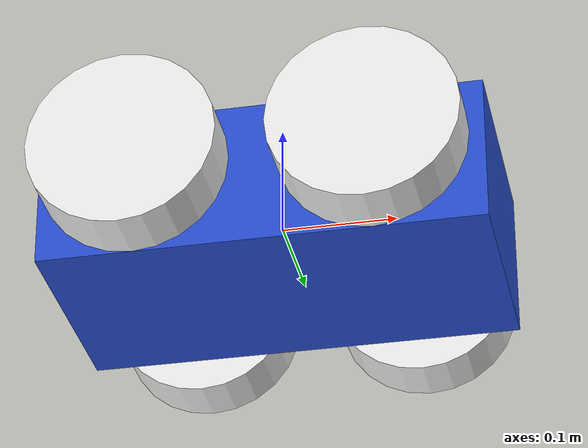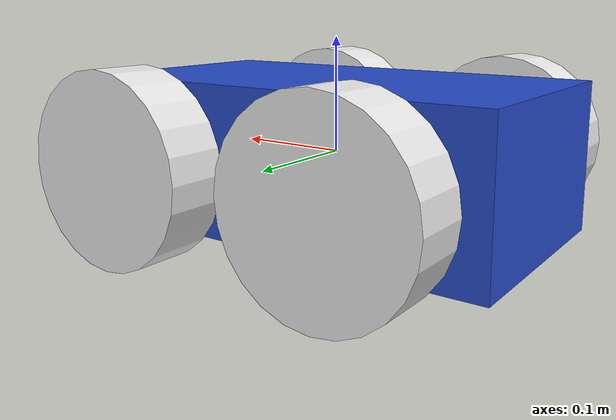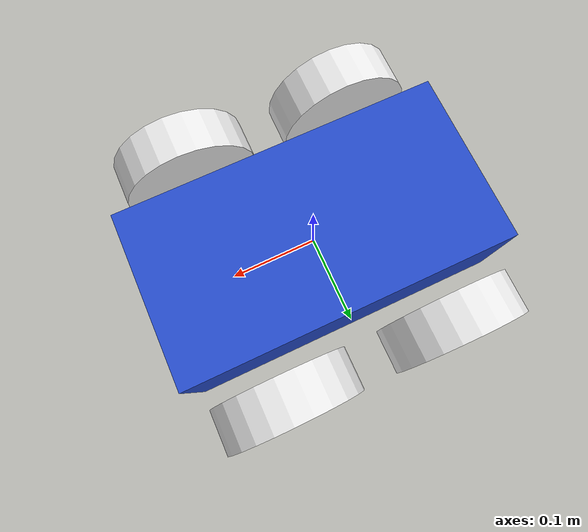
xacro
<?xml version='1.0'?>

<robot name="myrobot" xmlns:xacro="http://www.ros.org/wiki/xacro">

  <xacro:property name="cameraSize" value="0.05"/>
  <xacro:property name="cameraMass" value="0.1"/>
  <xacro:property name="camera_link" value="0.05" />

  <xacro:include filename="$(find mybot_description)/urdf/mybot.gazebo" />
  <xacro:include filename="$(find mybot_description)/urdf/materials.xacro" />
  <xacro:include filename="$(find mybot_description)/urdf/macros.xacro" />

  <link name='chassis'>
    <pose>0 0 0.1 0 0 0</pose>

    <inertial>
      <mass value="5.0"/>
      <origin xyz="0.0 0 0.1" rpy=" 0 0 0"/>
      <inertia
          ixx="0.1" ixy="0" ixz="0"
          iyy="0.1" iyz="0"
          izz="0.1"
      />
    </inertial>

    <collision name='collision'>
      <geometry>
        <box size=".38 .2 .13"/>
      </geometry>
    </collision>

    <visual name='chassis_visual'>
      <origin xyz="0 0 0" rpy=" 0 0 0"/>
      <geometry>
        <box size=".38 .2 .13"/>
      </geometry>
    </visual>
</link>

  <link name="left_back_wheel">
    <!--origin xyz="0.1 0.13 0.1" rpy="0 1.5707 1.5707"/-->
    <collision name="collision">
      <origin xyz="0 0 0" rpy="0 1.5707 1.5707"/>
      <geometry>
        <cylinder radius="0.08" length="0.05"/>
      </geometry>

    </collision>
    <visual name="left_back_wheel_visual">
      <origin xyz="0 0 0" rpy="0 1.5707 1.5707"/>
      <geometry>
        <cylinder radius="0.08" length="0.05"/>
      </geometry>
    </visual>
    <inertial>
      <origin xyz="0 0 0" rpy="0 1.5707 1.5707"/>
      <mass value="5"/>
      <inertia
        ixx=".1" ixy="0.0" ixz="0.0"
        iyy=".1" iyz="0.0"
        izz=".1"/>
    </inertial>
  </link>

  <link name="right_back_wheel">
    <!--origin xyz="0.1 -0.13 0.1" rpy="0 1.5707 1.5707"/-->
    <collision name="collision">
      <origin xyz="0 0 0" rpy="0 1.5707 1.5707"/>
      <geometry>
        <cylinder radius="0.08" length="0.05"/>
      </geometry>

    </collision>
    <visual name="right_back_wheel_visual">
      <origin xyz="0 0 0" rpy="0 1.5707 1.5707"/>
      <geometry>
        <cylinder radius="0.08" length="0.05"/>
      </geometry>
    </visual>
    <inertial>
      <origin xyz="0 0 0" rpy="0 1.5707 1.5707"/>
      <mass value="5"/>
      <inertia
        ixx=".1" ixy="0.0" ixz="0.0"
        iyy=".1" iyz="0.0"
        izz=".1"/>
    </inertial>
  </link>

  <link name="left_front_wheel">
    <!--origin xyz="0.1 0.13 0.1" rpy="0 1.5707 1.5707"/-->
    <collision name="collision">
      <origin xyz="0 0 0" rpy="0 1.5707 1.5707"/>
      <geometry>
        <cylinder radius="0.08" length="0.05"/>
      </geometry>

    </collision>
    <visual name="left_front_wheel_visual">
      <origin xyz="0 0 0" rpy="0 1.5707 1.5707"/>
      <geometry>
        <cylinder radius="0.08" length="0.05"/>
      </geometry>
    </visual>
    <inertial>
      <origin xyz="0 0 0" rpy="0 1.5707 1.5707"/>
      <mass value="5"/>
      <inertia
        ixx=".1" ixy="0.0" ixz="0.0"
        iyy=".1" iyz="0.0"
        izz=".1"/>
    </inertial>
  </link>

  <link name="right_front_wheel">
    <!--origin xyz="0.1 -0.13 0.1" rpy="0 1.5707 1.5707"/-->
    <collision name="collision">
      <origin xyz="0 0 0" rpy="0 1.5707 1.5707"/>
      <geometry>
        <cylinder radius="0.08" length="0.05"/>
      </geometry>

    </collision>
    <visual name="right_front_wheel_visual">
      <origin xyz="0 0 0" rpy="0 1.5707 1.5707"/>
      <geometry>
        <cylinder radius="0.08" length="0.05"/>
      </geometry>
    </visual>
    <inertial>
      <origin xyz="0 0 0" rpy="0 1.5707 1.5707"/>
      <mass value="5"/>
      <inertia
        ixx=".1" ixy="0.0" ixz="0.0"
        iyy=".1" iyz="0.0"
        izz=".1"/>
    </inertial>
  </link>

  <joint type="continuous" name="left_back_wheel_hinge">
    <origin xyz="-0.1 0.15 0" rpy="0 0 0"/>
    <!--origin xyz="0.1 0.13 0" rpy="0 1.5707 1.5707"/-->
    <child link="left_back_wheel"/>
    <parent link="chassis"/>
    <axis xyz="0 1 0" rpy="0 0 0"/>
    <limit effort="10000" velocity="1000"/>

  </joint>

  <joint type="continuous" name="right_back_wheel_hinge">
    <origin xyz="-0.1 -0.15 0" rpy="0 0 0"/>
    <!--origin xyz="0.1 -0.13 0" rpy="0 1.5707 1.5707"/-->
    <child link="right_back_wheel"/>
    <parent link="chassis"/>
    <axis xyz="0 1 0" rpy="0 0 0"/>
    <limit effort="10000" velocity="1000"/>

  </joint>

 <joint type="continuous" name="left_front_wheel_hinge">
    <origin xyz="0.1 0.15 0" rpy="0 0 0"/>
    <!--origin xyz="0.1 0.13 0" rpy="0 1.5707 1.5707"/-->
    <child link="left_front_wheel"/>
    <parent link="chassis"/>
    <axis xyz="0 1 0" rpy="0 0 0"/>
    <limit effort="10000" velocity="1000"/>

  </joint>

  <joint type="continuous" name="right_front_wheel_hinge">
    <origin xyz="0.1 -0.15 0" rpy="0 0 0"/>
    <!--origin xyz="0.1 -0.13 0" rpy="0 1.5707 1.5707"/-->
    <child link="right_front_wheel"/>
    <parent link="chassis"/>
    <axis xyz="0 1 0" rpy="0 0 0"/>
    <limit effort="10000" velocity="1000"/>

  </joint>

<transmission name="$left_front_trans">
  <type>transmission_interface/SimpleTransmission</type>
  <joint name="$left_front_wheel_hinge">
  <hardwareInterface>hardwareInterface>EffortJointInterface</hardwareInterface>
  </joint>
  <actuator name="$left_front_Motor">
    <hardwareInterface>EffortJointInterface</hardwareInterface>
    <mechanicalReduction>10</mechanicalReduction>
  </actuator>
</transmission>

<transmission name="$left_back_trans">
  <type>transmission_interface/SimpleTransmission</type>
  <joint name="$left_back_wheel_hinge">
  <hardwareInterface>hardwareInterface>EffortJointInterface</hardwareInterface>
  </joint>
  <actuator name="$left_back_Motor">
    <hardwareInterface>EffortJointInterface</hardwareInterface>
    <mechanicalReduction>10</mechanicalReduction>
  </actuator>
</transmission>

<transmission name="$right_back_trans">
  <type>transmission_interface/SimpleTransmission</type>
  <joint name="$right_back_wheel_hinge">
  <hardwareInterface>hardwareInterface>EffortJointInterface</hardwareInterface>
  </joint>
  <actuator name="$right_back_Motor">
    <hardwareInterface>EffortJointInterface</hardwareInterface>
    <mechanicalReduction>10</mechanicalReduction>
  </actuator>
</transmission>

<transmission name="$right_front_trans">
  <type>transmission_interface/SimpleTransmission</type>
  <joint name="$right_front_wheel_hinge">
  <hardwareInterface>hardwareInterface>EffortJointInterface</hardwareInterface>
  </joint>
  <actuator name="$right_front_Motor">
    <hardwareInterface>EffortJointInterface</hardwareInterface>
    <mechanicalReduction>10</mechanicalReduction>
  </actuator>
</transmission>

</robot>

<gazebo reference="left_camera_frame">
    <sensor type="multicamera" name="stereo_camera">
      <update_rate>30.0</update_rate>
      <camera name="left">
        <horizontal_fov>1.3962634</horizontal_fov>
        <image>
          <width>800</width>
          <height>800</height>
          <format>R8G8B8</format>
        </image>
        <clip>
          <near>0.02</near>
          <far>300</far>
        </clip>
        <noise>
          <type>gaussian</type>
          <mean>0.0</mean>
          <stddev>0.007</stddev>
        </noise>
      </camera>
      <camera name="right">
        <pose>0 -0.07 0 0 0 0</pose>
        <horizontal_fov>1.3962634</horizontal_fov>
        <image>
          <width>800</width>
          <height>800</height>
          <format>R8G8B8</format>
        </image>
        <clip>
          <near>0.02</near>
          <far>300</far>
        </clip>
        <noise>
          <type>gaussian</type>
          <mean>0.0</mean>
          <stddev>0.007</stddev>
        </noise>
      </camera>
      <plugin name="stereo_camera_controller" filename="libgazebo_ros_multicamera.so">
        <alwaysOn>true</alwaysOn>
        <updateRate>0.0</updateRate>
        <cameraName>multisense_sl/camera</cameraName>
        <imageTopicName>image_raw</imageTopicName>
        <cameraInfoTopicName>camera_info</cameraInfoTopicName>
        <frameName>left_camera_optical_frame</frameName>
        <hackBaseline>0.07</hackBaseline>
        <distortionK1>0.0</distortionK1>
        <distortionK2>0.0</distortionK2>
        <distortionK3>0.0</distortionK3>
        <distortionT1>0.0</distortionT1>
        <distortionT2>0.0</distortionT2>
      </plugin>
    </sensor>
  </gazebo>
